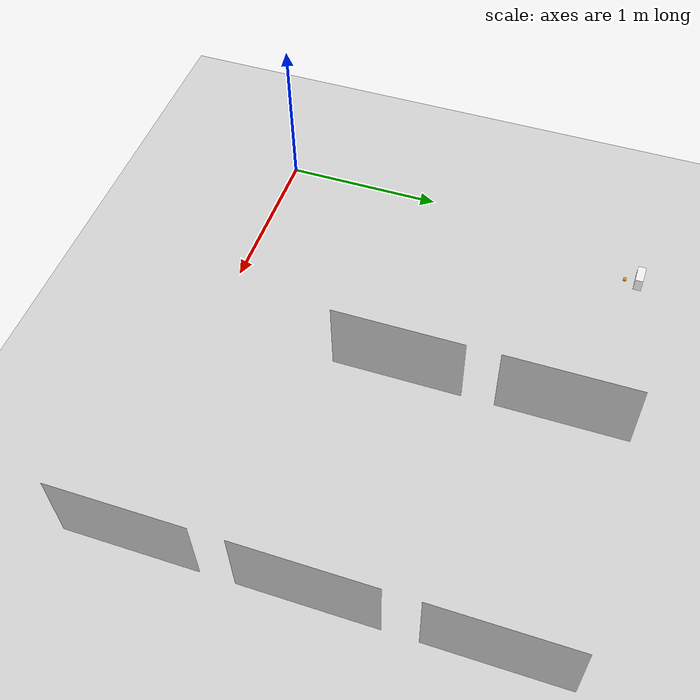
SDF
<sdf version="1.7">
 <world name="default">
  <light name="sun" type="directional">
   <pose>0 0 10 0 -0 0</pose>
   <diffuse>0.8 0.8 0.8 1</diffuse>
   <specular>0.2 0.2 0.2 1</specular>
   <attenuation>
    <range>1000</range>
    <constant>0.9</constant>
    <linear>0.01</linear>
    <quadratic>0.001</quadratic>
   </attenuation>
   <direction>-0.5 0.1 -0.9</direction>
   <spot><inner_angle>0</inner_angle><outer_angle>0</outer_angle><falloff>0</falloff></spot>
  </light>
  <model name="ground_plane">
   <static>1</static>
   <link name="link">
    <collision name="collision">
     <geometry><plane><normal>0 0 1</normal><size>100 100</size></plane></geometry>
     <surface>
      <contact><collide_bitmask>65535</collide_bitmask></contact>
      <friction><ode><mu>100</mu><mu2>50</mu2></ode></friction>
     </surface>
    </collision>
    <visual name="visual">
     <cast_shadows>0</cast_shadows>
     <geometry><plane><normal>0 0 1</normal><size>100 100</size></plane></geometry>
     <material>
      <script><uri>file://media/materials/scripts/gazebo.material</uri><name>Gazebo/Grey</name></script>
     </material>
    </visual>
   </link>
  </model>
  <gravity>0 0 -9.8</gravity>
  <magnetic_field>6e-06 2.3e-05 -4.2e-05</magnetic_field>
  <atmosphere type="adiabatic"/>
  <physics type="ode">
   <max_step_size>0.001</max_step_size>
   <real_time_factor>1</real_time_factor>
   <real_time_update_rate>1000</real_time_update_rate>
  </physics>
  <scene><ambient>0.4 0.4 0.4 1</ambient><background>0.7 0.7 0.7 1</background><shadows>1</shadows></scene>
  <spherical_coordinates>
   <surface_model>EARTH_WGS84</surface_model>
   <latitude_deg>0</latitude_deg>
   <longitude_deg>0</longitude_deg>
   <elevation>0</elevation>
   <heading_deg>0</heading_deg>
  </spherical_coordinates>
  <model name="reinovo_raicom_final">
   <link name="link_0">
    <inertial>
     <mass>0.664461</mass>
     <inertia>
      <ixx>0.110744</ixx>
      <ixy>0</ixy>
      <ixz>0</ixz>
      <iyy>0.0798188</iyy>
      <iyz>0</iyz>
      <izz>0.0798188</izz>
     </inertia>
    </inertial>
    <pose>-1.2 1.1 0.009 0 -0 0</pose>
    <sensor name="charge_contact" type="contact">
     <contact><collision>collision</collision><topic>__default_topic__</topic></contact>
     <plugin name="charge_contact" filename="libChargeContact.so"><object>charge_port</object></plugin>
    </sensor>
    <visual name="visual">
     <geometry><box><size>0.02 0.02 0.014</size></box></geometry>
     <material>
      <lighting>1</lighting>
      <script><uri>file://media/materials/scripts/gazebo.material</uri><name>Gazebo/Orange</name></script>
      <shader type="pixel"><normal_map>__default__</normal_map></shader>
     </material>
    </visual>
    <collision name="collision">
     <laser_retro>1</laser_retro>
     <geometry><box><size>0.02 0.02 0.018</size></box></geometry>
     <surface>
      <friction>
       <ode><mu>1</mu><mu2>1</mu2><fdir1>0 0 0</fdir1><slip1>0</slip1><slip2>0</slip2></ode>
       <torsional>
        <coefficient>1</coefficient>
        <patch_radius>0</patch_radius>
        <surface_radius>0</surface_radius>
        <use_patch_radius>1</use_patch_radius>
        <ode><slip>0</slip></ode>
       </torsional>
      </friction>
      <bounce><restitution_coefficient>0</restitution_coefficient><threshold>1e+06</threshold></bounce>
      <contact>
       <collide_without_contact>0</collide_without_contact>
       <collide_without_contact_bitmask>1</collide_without_contact_bitmask>
       <collide_bitmask>1</collide_bitmask>
       <ode>
        <soft_cfm>0.0001</soft_cfm>
        <soft_erp>0.2</soft_erp>
        <kp>1e+6</kp>
        <kd>100</kd>
        <max_vel>0.01</max_vel>
        <min_depth>0.001</min_depth>
       </ode>
       <bullet>
        <split_impulse>1</split_impulse>
        <split_impulse_penetration_threshold>-0.01</split_impulse_penetration_threshold>
        <soft_cfm>0</soft_cfm>
        <soft_erp>0.2</soft_erp>
        <kp>1e+13</kp>
        <kd>1</kd>
       </bullet>
      </contact>
     </surface>
    </collision>
   </link>
   <model name="small_marker_charge_pile">
    <link name="link_0">
     <inertial>
      <mass>10</mass>
      <inertia>
       <ixx>0.01875</ixx>
       <ixy>0</ixy>
       <ixz>0</ixz>
       <iyy>0.00883333</iyy>
       <iyz>0</iyz>
       <izz>0.0140833</izz>
      </inertia>
     </inertial>
     <pose>0.002297 -0.003336 0.045 0 -0 0</pose>
     <visual name="visual">
      <geometry><box><size>0.05 0.12 0.09</size></box></geometry>
      <material>
       <lighting>1</lighting>
       <script><uri>file://media/materials/scripts/gazebo.material</uri><name>Gazebo/White</name></script>
       <shader type="pixel"><normal_map>__default__</normal_map></shader>
       <ambient>1 1 1 1</ambient>
       <diffuse>1 1 1 1</diffuse>
       <specular>1 1 1 1</specular>
       <emissive>0 0 0 1</emissive>
      </material>
     </visual>
     <collision name="collision">
      <geometry><box><size>0.05 0.12 0.09</size></box></geometry>
      <surface>
       <friction>
        <ode><mu>1</mu><mu2>1</mu2><fdir1>0 0 0</fdir1><slip1>0</slip1><slip2>0</slip2></ode>
        <torsional>
         <coefficient>1</coefficient>
         <patch_radius>0</patch_radius>
         <surface_radius>0</surface_radius>
         <use_patch_radius>1</use_patch_radius>
         <ode><slip>0</slip></ode>
        </torsional>
       </friction>
       <bounce><restitution_coefficient>0</restitution_coefficient><threshold>1e+06</threshold></bounce>
       <contact>
        <collide_without_contact>0</collide_without_contact>
        <collide_without_contact_bitmask>1</collide_without_contact_bitmask>
        <collide_bitmask>1</collide_bitmask>
        <ode>
         <soft_cfm>0</soft_cfm>
         <soft_erp>0.2</soft_erp>
         <kp>1e+13</kp>
         <kd>1</kd>
         <max_vel>0.01</max_vel>
         <min_depth>0</min_depth>
        </ode>
        <bullet>
         <split_impulse>1</split_impulse>
         <split_impulse_penetration_threshold>-0.01</split_impulse_penetration_threshold>
         <soft_cfm>0</soft_cfm>
         <soft_erp>0.2</soft_erp>
         <kp>1e+13</kp>
         <kd>1</kd>
        </bullet>
       </contact>
      </surface>
     </collision>
    </link>
    <link name="link_1">
     <inertial>
      <mass>1</mass>
      <inertia>
       <ixx>0.166667</ixx>
       <ixy>0</ixy>
       <ixz>0</ixz>
       <iyy>0.166667</iyy>
       <iyz>0</iyz>
       <izz>0.166667</izz>
      </inertia>
     </inertial>
     <pose>0.028 0 0.05 0 -0 0</pose>
     <visual name="visual">
      <geometry><box><size>0.0001 0.05 0.05</size></box></geometry>
      <material>
       <lighting>1</lighting>
       <script>
        <uri>model://small_marker_charge_pile/materials/textures</uri>
        <uri>model://small_marker_charge_pile/materials/scripts</uri>
        <name>reinovo/ar_track_0</name>
       </script>
       <shader type="pixel"><normal_map>__default__</normal_map></shader>
       <specular>0.01 0.01 0.01 1</specular>
       <emissive>0 0 0 1</emissive>
      </material>
     </visual>
     <collision name="collision">
      <laser_retro>1</laser_retro>
      <geometry><box><size>0.001 0.05 0.05</size></box></geometry>
      <surface>
       <friction>
        <ode><mu>1</mu><mu2>1</mu2><fdir1>0 0 0</fdir1><slip1>0</slip1><slip2>0</slip2></ode>
        <torsional>
         <coefficient>1</coefficient>
         <patch_radius>0</patch_radius>
         <surface_radius>0</surface_radius>
         <use_patch_radius>1</use_patch_radius>
         <ode><slip>0</slip></ode>
        </torsional>
       </friction>
       <bounce><restitution_coefficient>0</restitution_coefficient><threshold>1e+06</threshold></bounce>
       <contact>
        <collide_without_contact>0</collide_without_contact>
        <collide_without_contact_bitmask>1</collide_without_contact_bitmask>
        <collide_bitmask>1</collide_bitmask>
        <ode>
         <soft_cfm>0</soft_cfm>
         <soft_erp>0.2</soft_erp>
         <kp>1e+13</kp>
         <kd>1</kd>
         <max_vel>0.01</max_vel>
         <min_depth>0</min_depth>
        </ode>
        <bullet>
         <split_impulse>1</split_impulse>
         <split_impulse_penetration_threshold>-0.01</split_impulse_penetration_threshold>
         <soft_cfm>0</soft_cfm>
         <soft_erp>0.2</soft_erp>
         <kp>1e+13</kp>
         <kd>1</kd>
        </bullet>
       </contact>
      </surface>
     </collision>
    </link>
    <joint name="link_0_JOINT_0" type="fixed">
     <parent>link_0</parent>
     <child>link_1</child>
     <physics>
      <ode><limit><cfm>0</cfm><erp>0.2</erp></limit><suspension><cfm>0</cfm><erp>0.2</erp></suspension></ode>
     </physics>
    </joint>
    <static>0</static>
    <pose>-1.2 1.19 -0 0 0 -1.5707</pose>
   </model>
   <joint name="link_0_JOINT_2" type="prismatic">
    <parent>small_marker_charge_pile::link_0</parent>
    <child>link_0</child>
    <axis>
     <xyz>0 1 0</xyz>
     <dynamics>
      <damping>100</damping>
      <spring_reference>0</spring_reference>
      <spring_stiffness>1000</spring_stiffness>
     </dynamics>
     <limit><lower>-1e+16</lower><upper>1e+16</upper></limit>
    </axis>
    <physics>
     <ode><limit><cfm>0</cfm><erp>0.2</erp></limit><suspension><cfm>0</cfm><erp>0.01</erp></suspension></ode>
    </physics>
   </joint>
   <static>0</static>
   <pose>1.48513 1.25415 0.004979 1.4e-05 5e-06 0</pose>
  </model>
  <model name="guangzhou">
   <link name="link_0">
    <inertial>
     <mass>1</mass>
     <inertia>
      <ixx>0.166667</ixx>
      <ixy>0</ixy>
      <ixz>0</ixz>
      <iyy>0.166667</iyy>
      <iyz>0</iyz>
      <izz>0.166667</izz>
     </inertia>
    </inertial>
    <visual name="visual">
     <geometry>
      <mesh><uri>model://rei_2025raicom/guangzhou/meshes/guangzhou.dae</uri><scale>1 1 1</scale></mesh>
     </geometry>
    </visual>
    <collision name="collision">
     <geometry>
      <mesh><uri>model://rei_2025raicom/shenzhen/meshes/shenzhen.dae</uri><scale>1 1 1</scale></mesh>
     </geometry>
     <surface>
      <friction>
       <ode><mu>1</mu><mu2>1</mu2><fdir1>0 0 0</fdir1><slip1>0</slip1><slip2>0</slip2></ode>
       <torsional>
        <coefficient>1</coefficient>
        <patch_radius>0</patch_radius>
        <surface_radius>0</surface_radius>
        <use_patch_radius>1</use_patch_radius>
        <ode><slip>0</slip></ode>
       </torsional>
      </friction>
      <bounce><restitution_coefficient>0</restitution_coefficient><threshold>1e+06</threshold></bounce>
      <contact>
       <collide_without_contact>0</collide_without_contact>
       <collide_without_contact_bitmask>1</collide_without_contact_bitmask>
       <collide_bitmask>1</collide_bitmask>
       <ode>
        <soft_cfm>0</soft_cfm>
        <soft_erp>0.2</soft_erp>
        <kp>1e+13</kp>
        <kd>1</kd>
        <max_vel>0.01</max_vel>
        <min_depth>0</min_depth>
       </ode>
       <bullet>
        <split_impulse>1</split_impulse>
        <split_impulse_penetration_threshold>-0.01</split_impulse_penetration_threshold>
        <soft_cfm>0</soft_cfm>
        <soft_erp>0.2</soft_erp>
        <kp>1e+13</kp>
        <kd>1</kd>
       </bullet>
      </contact>
     </surface>
    </collision>
   </link>
   <static>1</static>
   <pose>2.967 1.2 0.25 1.57 0 -1.57</pose>
  </model>
  <model name="shanghai">
   <link name="link_1">
    <inertial>
     <mass>1</mass>
     <inertia>
      <ixx>0.166667</ixx>
      <ixy>0</ixy>
      <ixz>0</ixz>
      <iyy>0.166667</iyy>
      <iyz>0</iyz>
      <izz>0.166667</izz>
     </inertia>
    </inertial>
    <visual name="visual">
     <geometry>
      <mesh><uri>model://rei_2025raicom/shanghai/meshes/shanghai.dae</uri><scale>1 1 1</scale></mesh>
     </geometry>
    </visual>
    <collision name="collision">
     <geometry>
      <mesh><uri>model://rei_2025raicom/shanghai/meshes/shanghai.dae</uri><scale>1 1 1</scale></mesh>
     </geometry>
     <surface>
      <friction>
       <ode><mu>1</mu><mu2>1</mu2><fdir1>0 0 0</fdir1><slip1>0</slip1><slip2>0</slip2></ode>
       <torsional>
        <coefficient>1</coefficient>
        <patch_radius>0</patch_radius>
        <surface_radius>0</surface_radius>
        <use_patch_radius>1</use_patch_radius>
        <ode><slip>0</slip></ode>
       </torsional>
      </friction>
      <bounce><restitution_coefficient>0</restitution_coefficient><threshold>1e+06</threshold></bounce>
      <contact>
       <collide_without_contact>0</collide_without_contact>
       <collide_without_contact_bitmask>1</collide_without_contact_bitmask>
       <collide_bitmask>1</collide_bitmask>
       <ode>
        <soft_cfm>0</soft_cfm>
        <soft_erp>0.2</soft_erp>
        <kp>1e+13</kp>
        <kd>1</kd>
        <max_vel>0.01</max_vel>
        <min_depth>0</min_depth>
       </ode>
       <bullet>
        <split_impulse>1</split_impulse>
        <split_impulse_penetration_threshold>-0.01</split_impulse_penetration_threshold>
        <soft_cfm>0</soft_cfm>
        <soft_erp>0.2</soft_erp>
        <kp>1e+13</kp>
        <kd>1</kd>
       </bullet>
      </contact>
     </surface>
    </collision>
   </link>
   <static>1</static>
   <pose>1.467 2.2 0.25 1.57 0 -1.57</pose>
  </model>
  <model name="shenzhen">
   <link name="link_0">
    <inertial>
     <mass>1</mass>
     <inertia>
      <ixx>0.166667</ixx>
      <ixy>0</ixy>
      <ixz>0</ixz>
      <iyy>0.166667</iyy>
      <iyz>0</iyz>
      <izz>0.166667</izz>
     </inertia>
    </inertial>
    <visual name="visual">
     <geometry>
      <mesh><uri>model://rei_2025raicom/shenzhen/meshes/shenzhen.dae</uri><scale>1 1 1</scale></mesh>
     </geometry>
    </visual>
    <collision name="collision">
     <geometry>
      <mesh><uri>model://rei_2025raicom/shenzhen/meshes/shenzhen.dae</uri><scale>1 1 1</scale></mesh>
     </geometry>
     <surface>
      <friction>
       <ode><mu>1</mu><mu2>1</mu2><fdir1>0 0 0</fdir1><slip1>0</slip1><slip2>0</slip2></ode>
       <torsional>
        <coefficient>1</coefficient>
        <patch_radius>0</patch_radius>
        <surface_radius>0</surface_radius>
        <use_patch_radius>1</use_patch_radius>
        <ode><slip>0</slip></ode>
       </torsional>
      </friction>
      <bounce><restitution_coefficient>0</restitution_coefficient><threshold>1e+06</threshold></bounce>
      <contact>
       <collide_without_contact>0</collide_without_contact>
       <collide_without_contact_bitmask>1</collide_without_contact_bitmask>
       <collide_bitmask>1</collide_bitmask>
       <ode>
        <soft_cfm>0</soft_cfm>
        <soft_erp>0.2</soft_erp>
        <kp>1e+13</kp>
        <kd>1</kd>
        <max_vel>0.01</max_vel>
        <min_depth>0</min_depth>
       </ode>
       <bullet>
        <split_impulse>1</split_impulse>
        <split_impulse_penetration_threshold>-0.01</split_impulse_penetration_threshold>
        <soft_cfm>0</soft_cfm>
        <soft_erp>0.2</soft_erp>
        <kp>1e+13</kp>
        <kd>1</kd>
       </bullet>
      </contact>
     </surface>
    </collision>
   </link>
   <static>1</static>
   <pose>1.467 1.2 0.25 1.57 0 -1.57</pose>
  </model>
  <model name="beijing">
   <link name="link_0">
    <inertial>
     <mass>1</mass>
     <inertia>
      <ixx>0.166667</ixx>
      <ixy>0</ixy>
      <ixz>0</ixz>
      <iyy>0.166667</iyy>
      <iyz>0</iyz>
      <izz>0.166667</izz>
     </inertia>
    </inertial>
    <visual name="visual">
     <geometry>
      <mesh><uri>model://rei_2025raicom/beijing/meshes/beijing.dae</uri><scale>1 1 1</scale></mesh>
     </geometry>
    </visual>
    <collision name="collision">
     <geometry>
      <mesh><uri>model://rei_2025raicom/shenzhen/meshes/shenzhen.dae</uri><scale>1 1 1</scale></mesh>
     </geometry>
     <surface>
      <friction>
       <ode><mu>1</mu><mu2>1</mu2><fdir1>0 0 0</fdir1><slip1>0</slip1><slip2>0</slip2></ode>
       <torsional>
        <coefficient>1</coefficient>
        <patch_radius>0</patch_radius>
        <surface_radius>0</surface_radius>
        <use_patch_radius>1</use_patch_radius>
        <ode><slip>0</slip></ode>
       </torsional>
      </friction>
      <bounce><restitution_coefficient>0</restitution_coefficient><threshold>1e+06</threshold></bounce>
      <contact>
       <collide_without_contact>0</collide_without_contact>
       <collide_without_contact_bitmask>1</collide_without_contact_bitmask>
       <collide_bitmask>1</collide_bitmask>
       <ode>
        <soft_cfm>0</soft_cfm>
        <soft_erp>0.2</soft_erp>
        <kp>1e+13</kp>
        <kd>1</kd>
        <max_vel>0.01</max_vel>
        <min_depth>0</min_depth>
       </ode>
       <bullet>
        <split_impulse>1</split_impulse>
        <split_impulse_penetration_threshold>-0.01</split_impulse_penetration_threshold>
        <soft_cfm>0</soft_cfm>
        <soft_erp>0.2</soft_erp>
        <kp>1e+13</kp>
        <kd>1</kd>
       </bullet>
      </contact>
     </surface>
    </collision>
   </link>
   <static>1</static>
   <pose>2.967 0.2 0.25 1.57 0 -1.57</pose>
  </model>
  <model name="jilin">
   <link name="link_0">
    <inertial>
     <mass>1</mass>
     <inertia>
      <ixx>0.166667</ixx>
      <ixy>0</ixy>
      <ixz>0</ixz>
      <iyy>0.166667</iyy>
      <iyz>0</iyz>
      <izz>0.166667</izz>
     </inertia>
    </inertial>
    <visual name="visual">
     <geometry><mesh><uri>model://rei_2025raicom/jilin/meshes/jilin.dae</uri><scale>1 1 1</scale></mesh></geometry>
    </visual>
    <collision name="collision">
     <geometry>
      <mesh><uri>model://rei_2025raicom/shenzhen/meshes/shenzhen.dae</uri><scale>1 1 1</scale></mesh>
     </geometry>
     <surface>
      <friction>
       <ode><mu>1</mu><mu2>1</mu2><fdir1>0 0 0</fdir1><slip1>0</slip1><slip2>0</slip2></ode>
       <torsional>
        <coefficient>1</coefficient>
        <patch_radius>0</patch_radius>
        <surface_radius>0</surface_radius>
        <use_patch_radius>1</use_patch_radius>
        <ode><slip>0</slip></ode>
       </torsional>
      </friction>
      <bounce><restitution_coefficient>0</restitution_coefficient><threshold>1e+06</threshold></bounce>
      <contact>
       <collide_without_contact>0</collide_without_contact>
       <collide_without_contact_bitmask>1</collide_without_contact_bitmask>
       <collide_bitmask>1</collide_bitmask>
       <ode>
        <soft_cfm>0</soft_cfm>
        <soft_erp>0.2</soft_erp>
        <kp>1e+13</kp>
        <kd>1</kd>
        <max_vel>0.01</max_vel>
        <min_depth>0</min_depth>
       </ode>
       <bullet>
        <split_impulse>1</split_impulse>
        <split_impulse_penetration_threshold>-0.01</split_impulse_penetration_threshold>
        <soft_cfm>0</soft_cfm>
        <soft_erp>0.2</soft_erp>
        <kp>1e+13</kp>
        <kd>1</kd>
       </bullet>
      </contact>
     </surface>
    </collision>
   </link>
   <static>1</static>
   <pose>2.967 2.2 0.25 1.57 0 -1.57</pose>
  </model>
  <light name="charge_light" type="spot">
   <pose>1.04085 2.21338 1 0 -0 0</pose>
   <diffuse>1 0 0 1</diffuse>
   <specular>1 0 0 1</specular>
   <direction>0 0 -1</direction>
   <attenuation><range>0</range><constant>0</constant><linear>0</linear><quadratic>0</quadratic></attenuation>
   <cast_shadows>0</cast_shadows>
   <spot><inner_angle>0.6</inner_angle><outer_angle>2</outer_angle><falloff>1</falloff></spot>
  </light>
  <light name="user_directional_light_0" type="directional">
   <pose>-0.875363 1.33852 1 0 -0 0</pose>
   <diffuse>0.5 0.5 0.5 1</diffuse>
   <specular>0.1 0.1 0.1 1</specular>
   <direction>0.1 0.1 -0.9</direction>
   <attenuation>
    <range>20</range>
    <constant>0.5</constant>
    <linear>0.01</linear>
    <quadratic>0.001</quadratic>
   </attenuation>
  </light>
 </world>
</sdf>
